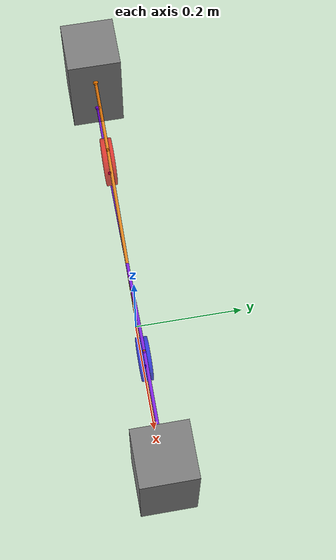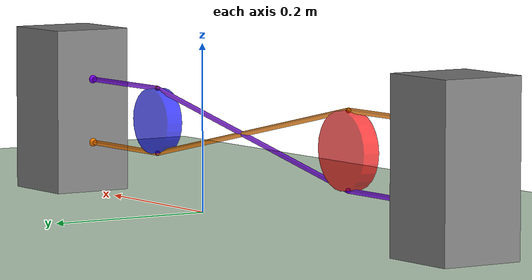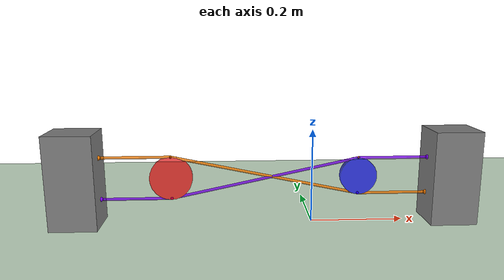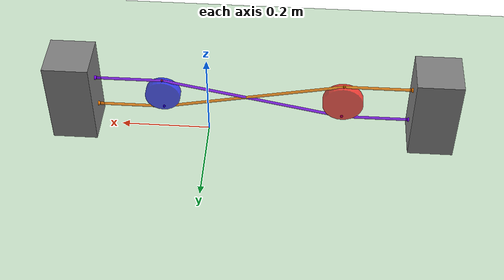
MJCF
<?xml version="1.0"?>
<mujoco>
    <option timestep="0.001"/>
    <option gravity="0 0 -9.8"/>

    <worldbody>
        <light pos="0 0 2"/>
        <geom name="ground" type="plane" size="1 1 0.1" rgba="0.8 0.9 0.8 1"/>
        <camera name="fixed" pos="0 -1.5 0.5" xyaxes="1 0 0 0 1 1"/>

        <body name="base_O1" pos="-0.5 0 0.1">
            <geom type="box" size="0.05 0.05 0.1" rgba="0.5 0.5 0.5 1"/>
            <site name="tendon1_start_top" type="sphere" size="0.005" pos="0.05 0 0.045" rgba="1 0.5 0 1"/>
            <site name="tendon2_start_bottom" type="sphere" size="0.005" pos="0.05 0 -0.045" rgba="0.5 0 1 1"/>
        </body>

        <body name="pulley1_assembly" pos="-0.3 0 0.1">
            <joint name="joint1" type="hinge" axis="0 0 1" range="-360 360"/>
            <geom type="cylinder" size="0.045 0.01" rgba="1 0 0 0.7" euler="90 0 0"/>
            <site name="pulley1_top" type="sphere" size="0.003" pos="0 0 0.045" rgba="1 0.5 0 1"/>
            <site name="pulley1_bottom" type="sphere" size="0.003" pos="0 0 -0.045" rgba="0.5 0 1 1"/>
        </body>

        <body name="pulley2_assembly" pos="0.1 0 0.1">
            <joint name="joint2" type="hinge" axis="0 0 1" range="-360 360"/>
            <geom type="cylinder" size="0.039 0.01" rgba="0 0 1 0.7" euler="90 0 0"/>
            <site name="pulley2_top" type="sphere" size="0.003" pos="0 0 0.039" rgba="1 0.5 0 1"/>
            <site name="pulley2_bottom" type="sphere" size="0.003" pos="0 0 -0.039" rgba="0.5 0 1 1"/>
        </body>

        <body name="base_O2" pos="0.3 0 0.1">
            <joint name="slider_O2" type="slide" axis="0 0 1" range="0 0.3" damping="0.5"/>
            <geom type="box" size="0.05 0.05 0.1" rgba="0.5 0.5 0.5 1" mass="2.0"/>
            <site name="tendon1_end_bottom" type="sphere" size="0.005" pos="-0.05 0 -0.039" rgba="1 0.5 0 1"/>
            <site name="tendon2_end_top" type="sphere" size="0.005" pos="-0.05 0 0.039" rgba="0.5 0 1 1"/>
        </body>
    </worldbody>

    <tendon>
        <spatial name="tendon1_cross" limited="true" range="0.5 2.0" width="0.003" rgba="1 0.5 0 0.8"
                 stiffness="800" damping="4">
            <site site="tendon1_start_top"/>
            <site site="pulley1_top"/>
            <site site="pulley2_bottom"/>
            <site site="tendon1_end_bottom"/>
        </spatial>

        <spatial name="tendon2_cross" limited="true" range="0.5 2.0" width="0.003" rgba="0.5 0 1 0.8"
                 stiffness="800" damping="4">
            <site site="tendon2_start_bottom"/>
            <site site="pulley1_bottom"/>
            <site site="pulley2_top"/>
            <site site="tendon2_end_top"/>
        </spatial>
    </tendon>

    <actuator>
        <position name="slider_motor" joint="slider_O2" gear="50" ctrllimited="true" ctrlrange="0 0.3"/>
    </actuator>
</mujoco>
